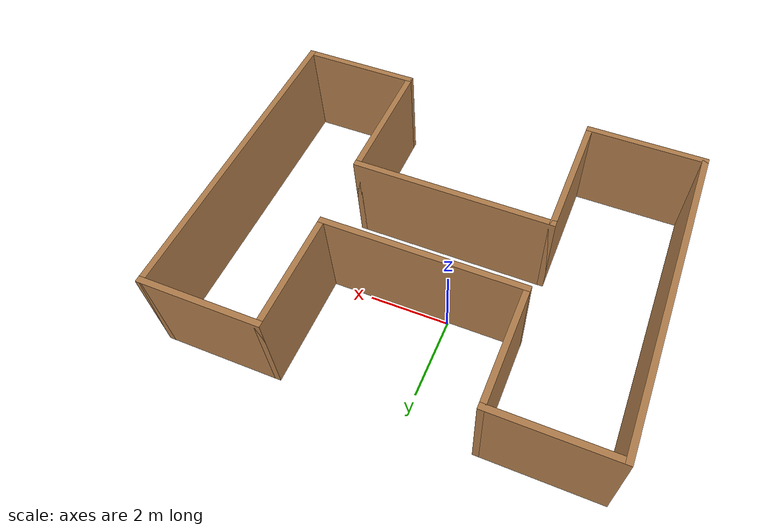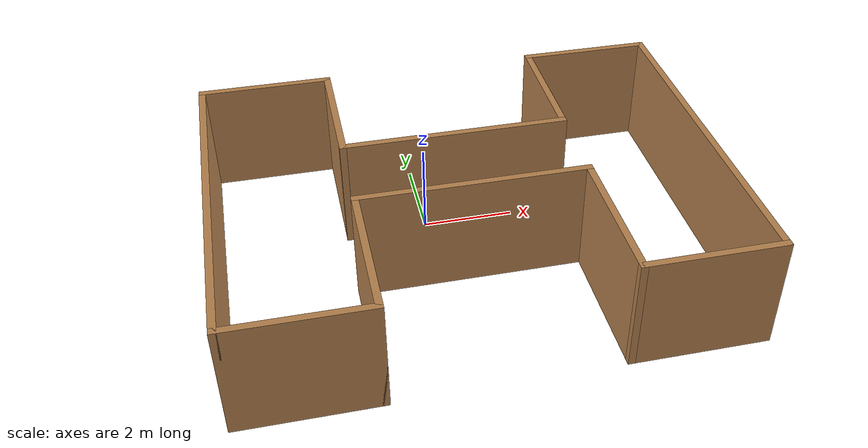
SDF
<?xml version='1.0'?>
<sdf version='1.7'>
  <model name='g4w2'>
    <pose>0.6765 -1.1945 0 0 -0 0</pose>
    <link name='Wall_0'>
      <collision name='Wall_0_Collision'>
        <geometry>
          <box>
            <size>5 0.15 2.5</size>
          </box>
        </geometry>
        <pose>0 0 1.25 0 -0 0</pose>
      </collision>
      <visual name='Wall_0_Visual'>
        <pose>0 0 1.25 0 -0 0</pose>
        <geometry>
          <box>
            <size>5 0.15 2.5</size>
          </box>
        </geometry>
        <material>
          <script>
            <uri>file://media/materials/scripts/gazebo.material</uri>
            <name>Gazebo/Wood</name>
          </script>
          <ambient>1 1 1 1</ambient>
        </material>
        <meta>
          <layer>0</layer>
        </meta>
      </visual>
      <pose>-0 -0.775 0 0 -0 0</pose>
    </link>
    <link name='Wall_10'>
      <collision name='Wall_10_Collision'>
        <geometry>
          <box>
            <size>3 0.15 2.5</size>
          </box>
        </geometry>
        <pose>0 0 1.25 0 -0 0</pose>
      </collision>
      <visual name='Wall_10_Visual'>
        <pose>0 0 1.25 0 -0 0</pose>
        <geometry>
          <box>
            <size>3 0.15 2.5</size>
          </box>
        </geometry>
        <material>
          <script>
            <uri>file://media/materials/scripts/gazebo.material</uri>
            <name>Gazebo/Wood</name>
          </script>
          <ambient>1 1 1 1</ambient>
        </material>
        <meta>
          <layer>0</layer>
        </meta>
      </visual>
      <pose>3.85 3.925 0 0 -0 0</pose>
    </link>
    <link name='Wall_11'>
      <collision name='Wall_11_Collision'>
        <geometry>
          <box>
            <size>8 0.15 2.5</size>
          </box>
        </geometry>
        <pose>0 0 1.25 0 -0 0</pose>
      </collision>
      <visual name='Wall_11_Visual'>
        <pose>0 0 1.25 0 -0 0</pose>
        <geometry>
          <box>
            <size>8 0.15 2.5</size>
          </box>
        </geometry>
        <material>
          <script>
            <uri>file://media/materials/scripts/gazebo.material</uri>
            <name>Gazebo/Wood</name>
          </script>
          <ambient>1 1 1 1</ambient>
        </material>
        <meta>
          <layer>0</layer>
        </meta>
      </visual>
      <pose>5.275 0 0 0 -0 -1.5708</pose>
    </link>
    <link name='Wall_12'>
      <collision name='Wall_12_Collision'>
        <geometry>
          <box>
            <size>3 0.15 2.5</size>
          </box>
        </geometry>
        <pose>0 0 1.25 0 -0 0</pose>
      </collision>
      <visual name='Wall_12_Visual'>
        <pose>0 0 1.25 0 -0 0</pose>
        <geometry>
          <box>
            <size>3 0.15 2.5</size>
          </box>
        </geometry>
        <material>
          <script>
            <uri>file://media/materials/scripts/gazebo.material</uri>
            <name>Gazebo/Wood</name>
          </script>
          <ambient>1 1 1 1</ambient>
        </material>
        <meta>
          <layer>0</layer>
        </meta>
      </visual>
      <pose>3.85 -3.925 0 0 -0 3.14159</pose>
    </link>
    <link name='Wall_13'>
      <collision name='Wall_13_Collision'>
        <geometry>
          <box>
            <size>3.3 0.15 2.5</size>
          </box>
        </geometry>
        <pose>0 0 1.25 0 -0 0</pose>
      </collision>
      <visual name='Wall_13_Visual'>
        <pose>0 0 1.25 0 -0 0</pose>
        <geometry>
          <box>
            <size>3.3 0.15 2.5</size>
          </box>
        </geometry>
        <material>
          <script>
            <uri>file://media/materials/scripts/gazebo.material</uri>
            <name>Gazebo/Wood</name>
          </script>
          <ambient>1 1 1 1</ambient>
        </material>
        <meta>
          <layer>0</layer>
        </meta>
      </visual>
      <pose>2.425 -2.35 0 0 -0 1.5708</pose>
    </link>
    <link name='Wall_2'>
      <collision name='Wall_2_Collision'>
        <geometry>
          <box>
            <size>5 0.15 2.5</size>
          </box>
        </geometry>
        <pose>0 0 1.25 0 -0 0</pose>
      </collision>
      <visual name='Wall_2_Visual'>
        <pose>0 0 1.25 0 -0 0</pose>
        <geometry>
          <box>
            <size>5 0.15 2.5</size>
          </box>
        </geometry>
        <material>
          <script>
            <uri>file://media/materials/scripts/gazebo.material</uri>
            <name>Gazebo/Wood</name>
          </script>
          <ambient>1 1 1 1</ambient>
        </material>
        <meta>
          <layer>0</layer>
        </meta>
      </visual>
      <pose>-0 1.075 0 0 -0 3.14159</pose>
    </link>
    <link name='Wall_3'>
      <collision name='Wall_3_Collision'>
        <geometry>
          <box>
            <size>3 0.15 2.5</size>
          </box>
        </geometry>
        <pose>0 0 1.25 0 -0 0</pose>
      </collision>
      <visual name='Wall_3_Visual'>
        <pose>0 0 1.25 0 -0 0</pose>
        <geometry>
          <box>
            <size>3 0.15 2.5</size>
          </box>
        </geometry>
        <material>
          <script>
            <uri>file://media/materials/scripts/gazebo.material</uri>
            <name>Gazebo/Wood</name>
          </script>
          <ambient>1 1 1 1</ambient>
        </material>
        <meta>
          <layer>0</layer>
        </meta>
      </visual>
      <pose>-2.425 2.5 0 0 -0 1.5708</pose>
    </link>
    <link name='Wall_4'>
      <collision name='Wall_4_Collision'>
        <geometry>
          <box>
            <size>3 0.15 2.5</size>
          </box>
        </geometry>
        <pose>0 0 1.25 0 -0 0</pose>
      </collision>
      <visual name='Wall_4_Visual'>
        <pose>0 0 1.25 0 -0 0</pose>
        <geometry>
          <box>
            <size>3 0.15 2.5</size>
          </box>
        </geometry>
        <material>
          <script>
            <uri>file://media/materials/scripts/gazebo.material</uri>
            <name>Gazebo/Wood</name>
          </script>
          <ambient>1 1 1 1</ambient>
        </material>
        <meta>
          <layer>0</layer>
        </meta>
      </visual>
      <pose>-3.85 3.925 0 0 -0 3.14159</pose>
    </link>
    <link name='Wall_5'>
      <collision name='Wall_5_Collision'>
        <geometry>
          <box>
            <size>8 0.15 2.5</size>
          </box>
        </geometry>
        <pose>0 0 1.25 0 -0 0</pose>
      </collision>
      <visual name='Wall_5_Visual'>
        <pose>0 0 1.25 0 -0 0</pose>
        <geometry>
          <box>
            <size>8 0.15 2.5</size>
          </box>
        </geometry>
        <material>
          <script>
            <uri>file://media/materials/scripts/gazebo.material</uri>
            <name>Gazebo/Wood</name>
          </script>
          <ambient>1 1 1 1</ambient>
        </material>
        <meta>
          <layer>0</layer>
        </meta>
      </visual>
      <pose>-5.275 0 0 0 -0 -1.5708</pose>
    </link>
    <link name='Wall_6'>
      <collision name='Wall_6_Collision'>
        <geometry>
          <box>
            <size>3 0.15 2.5</size>
          </box>
        </geometry>
        <pose>0 0 1.25 0 -0 0</pose>
      </collision>
      <visual name='Wall_6_Visual'>
        <pose>0 0 1.25 0 -0 0</pose>
        <geometry>
          <box>
            <size>3 0.15 2.5</size>
          </box>
        </geometry>
        <material>
          <script>
            <uri>file://media/materials/scripts/gazebo.material</uri>
            <name>Gazebo/Wood</name>
          </script>
          <ambient>1 1 1 1</ambient>
        </material>
        <meta>
          <layer>0</layer>
        </meta>
      </visual>
      <pose>-3.85 -3.925 0 0 -0 0</pose>
    </link>
    <link name='Wall_7'>
      <collision name='Wall_7_Collision'>
        <geometry>
          <box>
            <size>3.3 0.15 2.5</size>
          </box>
        </geometry>
        <pose>0 0 1.25 0 -0 0</pose>
      </collision>
      <visual name='Wall_7_Visual'>
        <pose>0 0 1.25 0 -0 0</pose>
        <geometry>
          <box>
            <size>3.3 0.15 2.5</size>
          </box>
        </geometry>
        <material>
          <script>
            <uri>file://media/materials/scripts/gazebo.material</uri>
            <name>Gazebo/Wood</name>
          </script>
          <ambient>1 1 1 1</ambient>
        </material>
        <meta>
          <layer>0</layer>
        </meta>
      </visual>
      <pose>-2.425 -2.35 0 0 -0 1.5708</pose>
    </link>
    <link name='Wall_9'>
      <collision name='Wall_9_Collision'>
        <geometry>
          <box>
            <size>3 0.15 2.5</size>
          </box>
        </geometry>
        <pose>0 0 1.25 0 -0 0</pose>
      </collision>
      <visual name='Wall_9_Visual'>
        <pose>0 0 1.25 0 -0 0</pose>
        <geometry>
          <box>
            <size>3 0.15 2.5</size>
          </box>
        </geometry>
        <material>
          <script>
            <uri>file://media/materials/scripts/gazebo.material</uri>
            <name>Gazebo/Wood</name>
          </script>
          <ambient>1 1 1 1</ambient>
        </material>
        <meta>
          <layer>0</layer>
        </meta>
      </visual>
      <pose>2.425 2.5 0 0 -0 1.5708</pose>
    </link>
    <static>1</static>
  </model>
</sdf>
